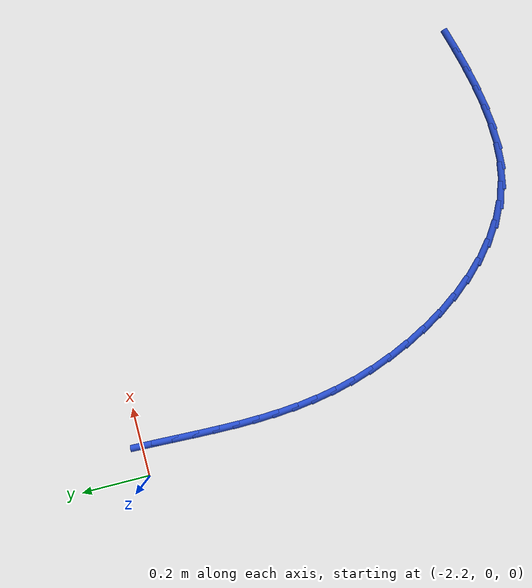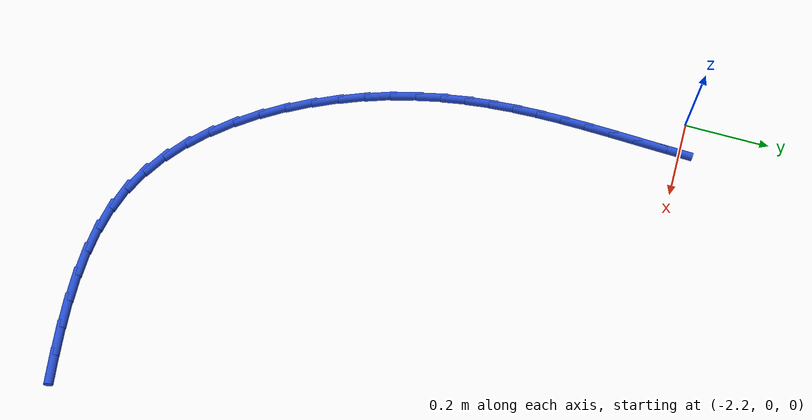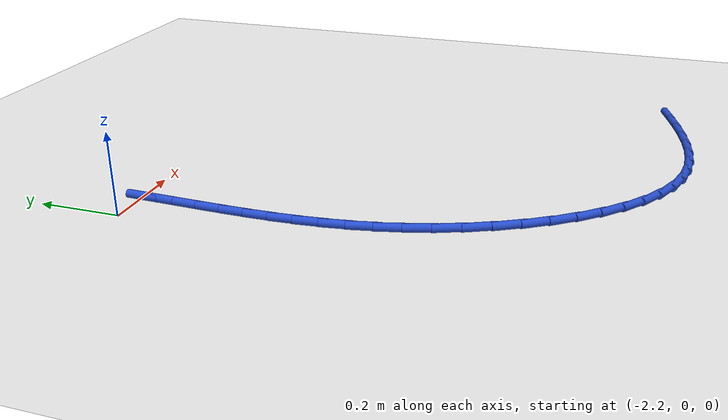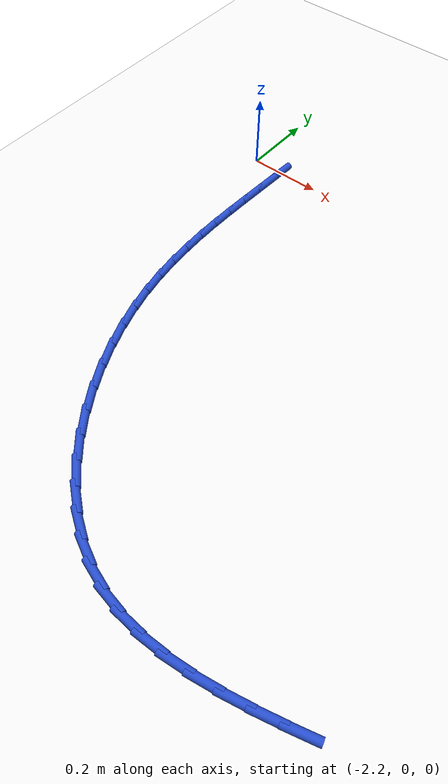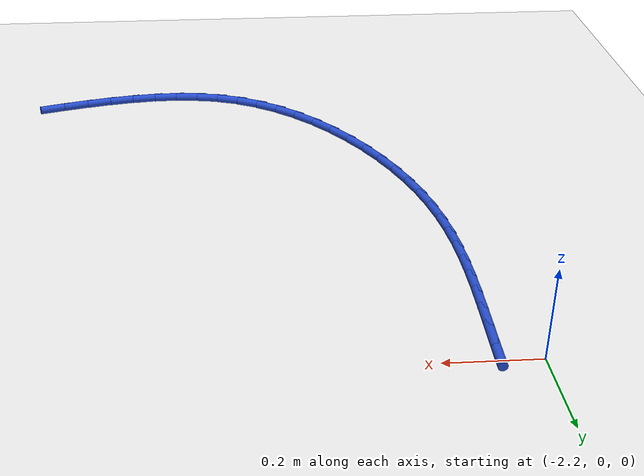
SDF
<sdf version="1.6">
 <world name="default">
  <model name="ground_plane">
   <static>1</static>
   <link name="link">
    <collision name="collision">
     <geometry><plane><normal>0 0 1</normal><size>100 100</size></plane></geometry>
     <surface><friction><ode><mu>100</mu><mu2>50</mu2></ode></friction></surface>
    </collision>
    <visual name="visual">
     <cast_shadows>0</cast_shadows>
     <geometry><plane><normal>0 0 1</normal><size>100 100</size></plane></geometry>
     <material>
      <script><uri>file://media/materials/scripts/gazebo.material</uri><name>Gazebo/WhiteGlow</name></script>
     </material>
    </visual>
   </link>
  </model>
  <model name="line">
   <link name="link_60">
    <pose>-2.1110610662694795 -0.009171983763594767 0.01 0 1.57 1.5344451497707614</pose>
    <collision name="collision">
     <geometry><cylinder><radius>0.01</radius><length>0.08</length></cylinder></geometry>
    </collision>
    <visual name="visual">
     <material>
      <script><name>Gazebo/Blue</name><uri>file://media/materials/scripts/gazebo.material</uri></script>
     </material>
     <geometry><cylinder><radius>0.01</radius><length>0.08</length></cylinder></geometry>
    </visual>
   </link>
   <link name="link_61">
    <pose>-2.113289400321359 -0.07044517035278212 0.01 0 1.57 1.5310399538948674</pose>
    <collision name="collision">
     <geometry><cylinder><radius>0.01</radius><length>0.08</length></cylinder></geometry>
    </collision>
    <visual name="visual">
     <material>
      <script><name>Gazebo/Blue</name><uri>file://media/materials/scripts/gazebo.material</uri></script>
     </material>
     <geometry><cylinder><radius>0.01</radius><length>0.08</length></cylinder></geometry>
    </visual>
   </link>
   <link name="link_62">
    <pose>-2.115696159041074 -0.13095095582539812 0.01 0 1.57 1.5348412670667781</pose>
    <collision name="collision">
     <geometry><cylinder><radius>0.01</radius><length>0.08</length></cylinder></geometry>
    </collision>
    <visual name="visual">
     <material>
      <script><name>Gazebo/Blue</name><uri>file://media/materials/scripts/gazebo.material</uri></script>
     </material>
     <geometry><cylinder><radius>0.01</radius><length>0.08</length></cylinder></geometry>
    </visual>
   </link>
   <link name="link_63">
    <pose>-2.1178498835987676 -0.190825599518173 0.01 0 1.57 1.546058405713638</pose>
    <collision name="collision">
     <geometry><cylinder><radius>0.01</radius><length>0.08</length></cylinder></geometry>
    </collision>
    <visual name="visual">
     <material>
      <script><name>Gazebo/Blue</name><uri>file://media/materials/scripts/gazebo.material</uri></script>
     </material>
     <geometry><cylinder><radius>0.01</radius><length>0.08</length></cylinder></geometry>
    </visual>
   </link>
   <link name="link_64">
    <pose>-2.1193191151645845 -0.2502053607678348 0.01 0 1.57 1.564810750504963</pose>
    <collision name="collision">
     <geometry><cylinder><radius>0.01</radius><length>0.08</length></cylinder></geometry>
    </collision>
    <visual name="visual">
     <material>
      <script><name>Gazebo/Blue</name><uri>file://media/materials/scripts/gazebo.material</uri></script>
     </material>
     <geometry><cylinder><radius>0.01</radius><length>0.08</length></cylinder></geometry>
    </visual>
   </link>
   <link name="link_65">
    <pose>-2.119672394908669 -0.30922649891111376 0.01 0 1.57 -1.5504903461134165</pose>
    <collision name="collision">
     <geometry><cylinder><radius>0.01</radius><length>0.08</length></cylinder></geometry>
    </collision>
    <visual name="visual">
     <material>
      <script><name>Gazebo/Blue</name><uri>file://media/materials/scripts/gazebo.material</uri></script>
     </material>
     <geometry><cylinder><radius>0.01</radius><length>0.08</length></cylinder></geometry>
    </visual>
   </link>
   <link name="link_66">
    <pose>-2.118478264001164 -0.3680252732847401 0.01 0 1.57 -1.516805991483034</pose>
    <collision name="collision">
     <geometry><cylinder><radius>0.01</radius><length>0.08</length></cylinder></geometry>
    </collision>
    <visual name="visual">
     <material>
      <script><name>Gazebo/Blue</name><uri>file://media/materials/scripts/gazebo.material</uri></script>
     </material>
     <geometry><cylinder><radius>0.01</radius><length>0.08</length></cylinder></geometry>
    </visual>
   </link>
   <link name="link_67">
    <pose>-2.115305263612215 -0.426737943225442 0.01 0 1.57 -1.4760660708891618</pose>
    <collision name="collision">
     <geometry><cylinder><radius>0.01</radius><length>0.08</length></cylinder></geometry>
    </collision>
    <visual name="visual">
     <material>
      <script><name>Gazebo/Blue</name><uri>file://media/materials/scripts/gazebo.material</uri></script>
     </material>
     <geometry><cylinder><radius>0.01</radius><length>0.08</length></cylinder></geometry>
    </visual>
   </link>
   <link name="link_68">
    <pose>-2.1097219349119647 -0.4855007680699496 0.01 0 1.57 -1.4288361667259584</pose>
    <collision name="collision">
     <geometry><cylinder><radius>0.01</radius><length>0.08</length></cylinder></geometry>
    </collision>
    <visual name="visual">
     <material>
      <script><name>Gazebo/Blue</name><uri>file://media/materials/scripts/gazebo.material</uri></script>
     </material>
     <geometry><cylinder><radius>0.01</radius><length>0.08</length></cylinder></geometry>
    </visual>
   </link>
   <link name="link_69">
    <pose>-2.1012968190705585 -0.5444500071549925 0.01 0 1.57 -1.3759330891775439</pose>
    <collision name="collision">
     <geometry><cylinder><radius>0.01</radius><length>0.08</length></cylinder></geometry>
    </collision>
    <visual name="visual">
     <material>
      <script><name>Gazebo/Blue</name><uri>file://media/materials/scripts/gazebo.material</uri></script>
     </material>
     <geometry><cylinder><radius>0.01</radius><length>0.08</length></cylinder></geometry>
    </visual>
   </link>
   <link name="link_70">
    <pose>-2.089598457258139 -0.6037219198173008 0.01 0 1.57 -1.3184219814397575</pose>
    <collision name="collision">
     <geometry><cylinder><radius>0.01</radius><length>0.08</length></cylinder></geometry>
    </collision>
    <visual name="visual">
     <material>
      <script><name>Gazebo/Blue</name><uri>file://media/materials/scripts/gazebo.material</uri></script>
     </material>
     <geometry><cylinder><radius>0.01</radius><length>0.08</length></cylinder></geometry>
    </visual>
   </link>
   <link name="link_71">
    <pose>-2.074195582864819 -0.6634524754961587 0.01 0 1.57 -1.258623916845615</pose>
    <collision name="collision">
     <geometry><cylinder><radius>0.01</radius><length>0.08</length></cylinder></geometry>
    </collision>
    <visual name="visual">
     <material>
      <script><name>Gazebo/Blue</name><uri>file://media/materials/scripts/gazebo.material</uri></script>
     </material>
     <geometry><cylinder><radius>0.01</radius><length>0.08</length></cylinder></geometry>
    </visual>
   </link>
   <link name="link_72">
    <pose>-2.0547937821092317 -0.7235712483974103 0.01 0 1.57 -1.199381688233921</pose>
    <collision name="collision">
     <geometry><cylinder><radius>0.01</radius><length>0.08</length></cylinder></geometry>
    </collision>
    <visual name="visual">
     <material>
      <script><name>Gazebo/Blue</name><uri>file://media/materials/scripts/gazebo.material</uri></script>
     </material>
     <geometry><cylinder><radius>0.01</radius><length>0.08</length></cylinder></geometry>
    </visual>
   </link>
   <link name="link_73">
    <pose>-2.0314758037755265 -0.7834389932395882 0.01 0 1.57 -1.1396289571758322</pose>
    <collision name="collision">
     <geometry><cylinder><radius>0.01</radius><length>0.08</length></cylinder></geometry>
    </collision>
    <visual name="visual">
     <material>
      <script><name>Gazebo/Blue</name><uri>file://media/materials/scripts/gazebo.material</uri></script>
     </material>
     <geometry><cylinder><radius>0.01</radius><length>0.08</length></cylinder></geometry>
    </visual>
   </link>
   <link name="link_74">
    <pose>-2.0043888143320006 -0.842319312909575 0.01 0 1.57 -1.0777742081217268</pose>
    <collision name="collision">
     <geometry><cylinder><radius>0.01</radius><length>0.08</length></cylinder></geometry>
    </collision>
    <visual name="visual">
     <material>
      <script><name>Gazebo/Blue</name><uri>file://media/materials/scripts/gazebo.material</uri></script>
     </material>
     <geometry><cylinder><radius>0.01</radius><length>0.08</length></cylinder></geometry>
    </visual>
   </link>
   <link name="link_75">
    <pose>-1.9736799802469522 -0.8994758102942524 0.01 0 1.57 -1.0122188555464455</pose>
    <collision name="collision">
     <geometry><cylinder><radius>0.01</radius><length>0.08</length></cylinder></geometry>
    </collision>
    <visual name="visual">
     <material>
      <script><name>Gazebo/Blue</name><uri>file://media/materials/scripts/gazebo.material</uri></script>
     </material>
     <geometry><cylinder><radius>0.01</radius><length>0.08</length></cylinder></geometry>
    </visual>
   </link>
   <link name="link_76">
    <pose>-1.9394964679886775 -0.9541720882805032 0.01 0 1.57 -0.9412800047535651</pose>
    <collision name="collision">
     <geometry><cylinder><radius>0.01</radius><length>0.08</length></cylinder></geometry>
    </collision>
    <visual name="visual">
     <material>
      <script><name>Gazebo/Blue</name><uri>file://media/materials/scripts/gazebo.material</uri></script>
     </material>
     <geometry><cylinder><radius>0.01</radius><length>0.08</length></cylinder></geometry>
    </visual>
   </link>
   <link name="link_77">
    <pose>-1.9019854440254735 -1.0056717497552097 0.01 0 1.57 -0.8631409231560844</pose>
    <collision name="collision">
     <geometry><cylinder><radius>0.01</radius><length>0.08</length></cylinder></geometry>
    </collision>
    <visual name="visual">
     <material>
      <script><name>Gazebo/Blue</name><uri>file://media/materials/scripts/gazebo.material</uri></script>
     </material>
     <geometry><cylinder><radius>0.01</radius><length>0.08</length></cylinder></geometry>
    </visual>
   </link>
   <link name="link_78">
    <pose>-1.8612940748256372 -1.0532383976052553 0.01 0 1.57 -0.7758476132541268</pose>
    <collision name="collision">
     <geometry><cylinder><radius>0.01</radius><length>0.08</length></cylinder></geometry>
    </collision>
    <visual name="visual">
     <material>
      <script><name>Gazebo/Blue</name><uri>file://media/materials/scripts/gazebo.material</uri></script>
     </material>
     <geometry><cylinder><radius>0.01</radius><length>0.08</length></cylinder></geometry>
    </visual>
   </link>
   <link name="link_79">
    <pose>-1.817569526857467 -1.0961356347175206 0.01 0 1.57 -0.6773906910216246</pose>
    <collision name="collision">
     <geometry><cylinder><radius>0.01</radius><length>0.08</length></cylinder></geometry>
    </collision>
    <visual name="visual">
     <material>
      <script><name>Gazebo/Blue</name><uri>file://media/materials/scripts/gazebo.material</uri></script>
     </material>
     <geometry><cylinder><radius>0.01</radius><length>0.08</length></cylinder></geometry>
    </visual>
   </link>
   <link name="link_80">
    <pose>-1.7709589665892587 -1.133627063978889 0.01 0 1.57 -0.5659363737785857</pose>
    <collision name="collision">
     <geometry><cylinder><radius>0.01</radius><length>0.08</length></cylinder></geometry>
    </collision>
    <visual name="visual">
     <material>
      <script><name>Gazebo/Blue</name><uri>file://media/materials/scripts/gazebo.material</uri></script>
     </material>
     <geometry><cylinder><radius>0.01</radius><length>0.08</length></cylinder></geometry>
    </visual>
   </link>
   <link name="link_81">
    <pose>-1.7216095604893096 -1.1649762882762436 0.01 0 1.57 -0.4402800225667879</pose>
    <collision name="collision">
     <geometry><cylinder><radius>0.01</radius><length>0.08</length></cylinder></geometry>
    </collision>
    <visual name="visual">
     <material>
      <script><name>Gazebo/Blue</name><uri>file://media/materials/scripts/gazebo.material</uri></script>
     </material>
     <geometry><cylinder><radius>0.01</radius><length>0.08</length></cylinder></geometry>
    </visual>
   </link>
   <link name="link_82">
    <pose>-1.669668475025918 -1.1894469104964656 0.01 0 1.57 -0.301096248731344</pose>
    <collision name="collision">
     <geometry><cylinder><radius>0.01</radius><length>0.08</length></cylinder></geometry>
    </collision>
    <visual name="visual">
     <material>
      <script><name>Gazebo/Blue</name><uri>file://media/materials/scripts/gazebo.material</uri></script>
     </material>
     <geometry><cylinder><radius>0.01</radius><length>0.08</length></cylinder></geometry>
    </visual>
   </link>
   <link name="link_83">
    <pose>-1.6152879025886941 -1.206334134103007 0.01 0 1.57 -0.16439825874684352</pose>
    <collision name="collision">
     <geometry><cylinder><radius>0.01</radius><length>0.08</length></cylinder></geometry>
    </collision>
    <visual name="visual">
     <material>
      <script><name>Gazebo/Blue</name><uri>file://media/materials/scripts/gazebo.material</uri></script>
     </material>
     <geometry><cylinder><radius>0.01</radius><length>0.08</length></cylinder></geometry>
    </visual>
   </link>
   <link name="link_84">
    <pose>-1.5587442977883927 -1.2157144636558852 0.01 0 1.57 -0.04735264518825751</pose>
    <collision name="collision">
     <geometry><cylinder><radius>0.01</radius><length>0.08</length></cylinder></geometry>
    </collision>
    <visual name="visual">
     <material>
      <script><name>Gazebo/Blue</name><uri>file://media/materials/scripts/gazebo.material</uri></script>
     </material>
     <geometry><cylinder><radius>0.01</radius><length>0.08</length></cylinder></geometry>
    </visual>
   </link>
   <link name="link_85">
    <pose>-1.5004433915552766 -1.2184772310512264 0.01 0 1.57 0.049042426101207175</pose>
    <collision name="collision">
     <geometry><cylinder><radius>0.01</radius><length>0.08</length></cylinder></geometry>
    </collision>
    <visual name="visual">
     <material>
      <script><name>Gazebo/Blue</name><uri>file://media/materials/scripts/gazebo.material</uri></script>
     </material>
     <geometry><cylinder><radius>0.01</radius><length>0.08</length></cylinder></geometry>
    </visual>
   </link>
   <link name="link_86">
    <pose>-1.4407969440525539 -1.2155496771028285 0.01 0 1.57 0.12627411653840384</pose>
    <collision name="collision">
     <geometry><cylinder><radius>0.01</radius><length>0.08</length></cylinder></geometry>
    </collision>
    <visual name="visual">
     <material>
      <script><name>Gazebo/Blue</name><uri>file://media/materials/scripts/gazebo.material</uri></script>
     </material>
     <geometry><cylinder><radius>0.01</radius><length>0.08</length></cylinder></geometry>
    </visual>
   </link>
   <link name="link_87">
    <pose>-1.3802167154434315 -1.2078590426244902 0.01 0 1.57 0.186451309996464</pose>
    <collision name="collision">
     <geometry><cylinder><radius>0.01</radius><length>0.08</length></cylinder></geometry>
    </collision>
    <visual name="visual">
     <material>
      <script><name>Gazebo/Blue</name><uri>file://media/materials/scripts/gazebo.material</uri></script>
     </material>
     <geometry><cylinder><radius>0.01</radius><length>0.08</length></cylinder></geometry>
    </visual>
   </link>
   <link name="link_88">
    <pose>-1.319114465891117 -1.1963325684300092 0.01 0 1.57 0.23158795840162613</pose>
    <collision name="collision">
     <geometry><cylinder><radius>0.01</radius><length>0.08</length></cylinder></geometry>
    </collision>
    <visual name="visual">
     <material>
      <script><name>Gazebo/Blue</name><uri>file://media/materials/scripts/gazebo.material</uri></script>
     </material>
     <geometry><cylinder><radius>0.01</radius><length>0.08</length></cylinder></geometry>
    </visual>
   </link>
   <link name="link_89">
    <pose>-1.2579019555588165 -1.1818974953331847 0.01 0 1.57 0.26325973451869933</pose>
    <collision name="collision">
     <geometry><cylinder><radius>0.01</radius><length>0.08</length></cylinder></geometry>
    </collision>
    <visual name="visual">
     <material>
      <script><name>Gazebo/Blue</name><uri>file://media/materials/scripts/gazebo.material</uri></script>
     </material>
     <geometry><cylinder><radius>0.01</radius><length>0.08</length></cylinder></geometry>
    </visual>
   </link>
   <link name="link_90">
    <pose>-1.1969909446097393 -1.1654810641478146 0.01 0 1.57 0.28270926836636073</pose>
    <collision name="collision">
     <geometry><cylinder><radius>0.01</radius><length>0.08</length></cylinder></geometry>
    </collision>
    <visual name="visual">
     <material>
      <script><name>Gazebo/Blue</name><uri>file://media/materials/scripts/gazebo.material</uri></script>
     </material>
     <geometry><cylinder><radius>0.01</radius><length>0.08</length></cylinder></geometry>
    </visual>
   </link>
  </model>
 </world>
</sdf>
